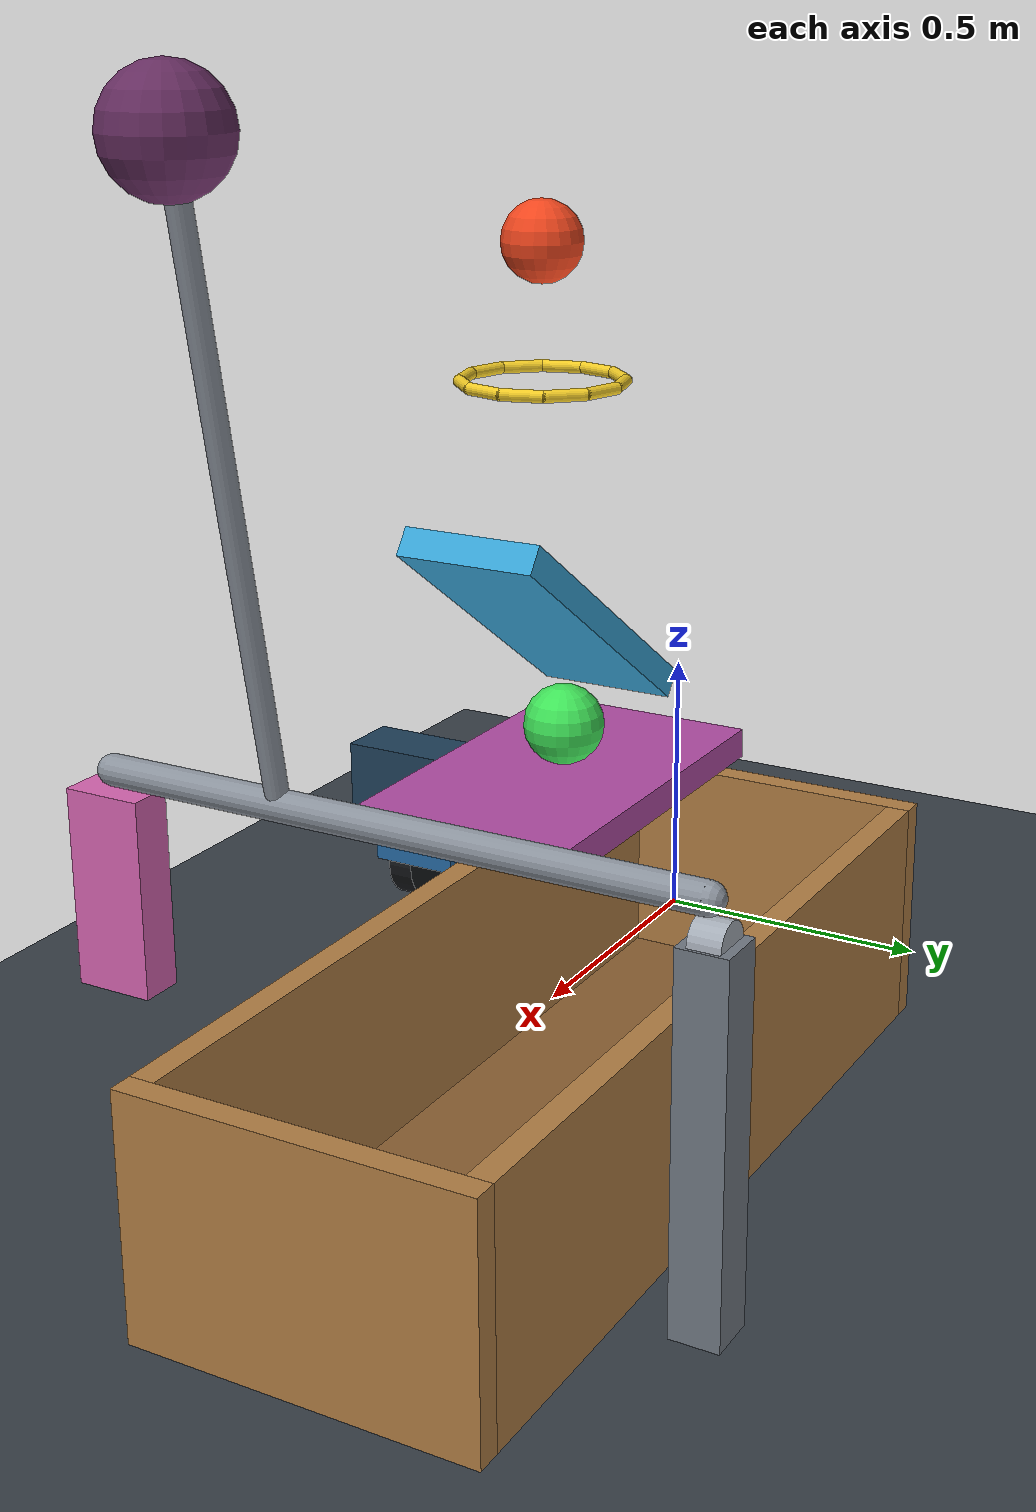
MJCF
<mujoco model="ball_hoop_cart_flap_box">
  <compiler angle="degree" autolimits="true"/>
  <option timestep="0.002" gravity="0 0 -9.81" integrator="implicitfast" iterations="80"/>
  <size njmax="1000" nconmax="300"/>

  <visual>
    <headlight ambient="0.35 0.35 0.35" diffuse="0.65 0.65 0.65" specular="0.2 0.2 0.2"/>
  </visual>

  <worldbody>
    <light name="overhead" pos="0.5 -1 3" dir="0.1 0.3 -1"/>
    <camera name="overview" pos="3.2 -4 2.7" xyaxes="0.85 0.53 0 -0.24 0.39 0.89"/>

    <geom name="floor" type="plane" size="5 5 0.1" rgba="0.22 0.25 0.28 1" friction="0.8 0.02 0.005" condim="6"/>

    <!-- Initial vertical clearance to the inclined contact surface is 0.6 m. -->
    <body name="ball1" pos="0 -0.3 1.28428">
      <freejoint name="ball1_free"/>
      <geom name="ball1_sphere" type="sphere" size="0.08" mass="0.8" rgba="0.95 0.28 0.12 1" friction="0.08 0.005 0.001" condim="3" solref="0.006 1"/>
    </body>

    <body name="hoop" pos="0 -0.3 1.02">
      <geom name="hoop_01" type="capsule" fromto="0.16 0 0 0.138564 0.08 0" size="0.012" rgba="0.95 0.8 0.15 1"/>
      <geom name="hoop_02" type="capsule" fromto="0.138564 0.08 0 0.08 0.138564 0" size="0.012" rgba="0.95 0.8 0.15 1"/>
      <geom name="hoop_03" type="capsule" fromto="0.08 0.138564 0 0 0.16 0" size="0.012" rgba="0.95 0.8 0.15 1"/>
      <geom name="hoop_04" type="capsule" fromto="0 0.16 0 -0.08 0.138564 0" size="0.012" rgba="0.95 0.8 0.15 1"/>
      <geom name="hoop_05" type="capsule" fromto="-0.08 0.138564 0 -0.138564 0.08 0" size="0.012" rgba="0.95 0.8 0.15 1"/>
      <geom name="hoop_06" type="capsule" fromto="-0.138564 0.08 0 -0.16 0 0" size="0.012" rgba="0.95 0.8 0.15 1"/>
      <geom name="hoop_07" type="capsule" fromto="-0.16 0 0 -0.138564 -0.08 0" size="0.012" rgba="0.95 0.8 0.15 1"/>
      <geom name="hoop_08" type="capsule" fromto="-0.138564 -0.08 0 -0.08 -0.138564 0" size="0.012" rgba="0.95 0.8 0.15 1"/>
      <geom name="hoop_09" type="capsule" fromto="-0.08 -0.138564 0 0 -0.16 0" size="0.012" rgba="0.95 0.8 0.15 1"/>
      <geom name="hoop_10" type="capsule" fromto="0 -0.16 0 0.08 -0.138564 0" size="0.012" rgba="0.95 0.8 0.15 1"/>
      <geom name="hoop_11" type="capsule" fromto="0.08 -0.138564 0 0.138564 -0.08 0" size="0.012" rgba="0.95 0.8 0.15 1"/>
      <geom name="hoop_12" type="capsule" fromto="0.138564 -0.08 0 0.16 0 0" size="0.012" rgba="0.95 0.8 0.15 1"/>
    </body>

    <!-- The slide constrains the cart; its wheels are visual. -->
    <body name="cart" pos="0 -0.3 0.25">
      <joint name="cart_slide" type="slide" axis="1 0 0" range="0 1.15" damping="0.02" frictionloss="0.005" solreflimit="0.01 1"/>
      <geom name="cart_base" type="box" pos="0 0 -0.07" size="0.32 0.145 0.04" mass="0.06" rgba="0.15 0.42 0.65 1" friction="0.08 0.005 0.001"/>
      <geom name="cart_sloped_back" type="box" pos="0 0 0.3" euler="0 -35 0" size="0.35 0.145 0.03" mass="0.12" rgba="0.22 0.65 0.85 1" friction="0.08 0.005 0.001" solref="0.006 1"/>
      <geom name="cart_bumper_beam" type="box" pos="0.37 0 -0.02" size="0.12 0.08 0.035" mass="0.01" rgba="0.15 0.42 0.65 1"/>
      <geom name="cart_bumper" type="box" pos="0.44 0 0.09" size="0.055 0.13 0.075" mass="0.03" rgba="0.12 0.25 0.35 1" friction="0.15 0.005 0.001" solref="0.006 1"/>
      <geom name="cart_wheel_front_left" type="cylinder" pos="0.2 -0.17 -0.17" euler="90 0 0" size="0.08 0.025" mass="0.005" contype="0" conaffinity="0" rgba="0.08 0.09 0.1 1"/>
      <geom name="cart_wheel_front_right" type="cylinder" pos="0.2 0.17 -0.17" euler="90 0 0" size="0.08 0.025" mass="0.005" contype="0" conaffinity="0" rgba="0.08 0.09 0.1 1"/>
      <geom name="cart_wheel_rear_left" type="cylinder" pos="-0.2 -0.17 -0.17" euler="90 0 0" size="0.08 0.025" mass="0.005" contype="0" conaffinity="0" rgba="0.08 0.09 0.1 1"/>
      <geom name="cart_wheel_rear_right" type="cylinder" pos="-0.2 0.17 -0.17" euler="90 0 0" size="0.08 0.025" mass="0.005" contype="0" conaffinity="0" rgba="0.08 0.09 0.1 1"/>
    </body>

    <!-- The over-center weight holds the loaded shelf up until the cart strikes its tab. -->
    <!-- Short travel lets the flap stop before ball2 traverses the shelf. -->
    <body name="flap" pos="1.3 0 0.65">
      <joint name="flap_hinge" type="hinge" axis="0 1 0" range="-12 0" damping="0.035" frictionloss="0.002" armature="0.002" solreflimit="0.008 1" solimplimit="0.95 0.99 0.001"/>
      <geom name="flap_shelf" type="box" pos="-0.28 0.3 0" size="0.28 0.17 0.0225" mass="0.06" rgba="0.7 0.3 0.65 1" friction="0.6 0.01 0.003" condim="6"/>
      <geom name="flap_axle" type="capsule" fromto="0 -0.3 0 0 0.68 0" size="0.025" mass="0.02" rgba="0.55 0.58 0.62 1"/>
      <geom name="flap_strike_tab" type="box" pos="0 -0.3 -0.19" size="0.035 0.065 0.16" mass="0.015" rgba="0.85 0.4 0.7 1" friction="0.15 0.005 0.001" solref="0.006 1"/>
      <geom name="flap_weight_arm" type="capsule" fromto="0 0 0 0.17 0 0.95" size="0.018" mass="0.025" rgba="0.55 0.58 0.62 1"/>
      <geom name="flap_overcenter_weight" type="sphere" pos="0.17 0 0.95" size="0.09" mass="0.3" rgba="0.4 0.18 0.38 1"/>
    </body>

    <!-- The hinge supplies the bearing constraint; its visual bearing adds no contact friction. -->
    <body name="flap_support" pos="1.3 0.69 0">
      <geom name="flap_support_post" type="box" pos="0 0 0.295" size="0.04 0.04 0.295" rgba="0.45 0.48 0.52 1"/>
      <geom name="flap_support_bearing" type="cylinder" pos="0 0 0.59" euler="90 0 0" size="0.035 0.025" contype="0" conaffinity="0" rgba="0.65 0.68 0.72 1"/>
    </body>

    <body name="ball2" pos="1 0.3 0.7325">
      <freejoint name="ball2_free"/>
      <geom name="ball2_sphere" type="sphere" size="0.06" mass="0.1" rgba="0.25 0.9 0.35 1" friction="0.8 0.02 0.006" condim="6" solref="0.008 1"/>
    </body>

    <!-- The box is beside the cart's travel lane and beneath the shelf's release edge. -->
    <body name="box" pos="0.98 0.3 0">
      <geom name="box_bottom" type="box" pos="0 0 0.025" size="0.72 0.26 0.02" rgba="0.55 0.38 0.2 1" friction="0.8 0.02 0.006" condim="6" solref="0.008 1"/>
      <geom name="box_left_wall" type="box" pos="-0.72 0 0.205" size="0.02 0.28 0.195" rgba="0.7 0.5 0.27 1" friction="0.8 0.02 0.006" condim="6"/>
      <geom name="box_right_wall" type="box" pos="0.72 0 0.205" size="0.02 0.28 0.195" rgba="0.7 0.5 0.27 1" friction="0.8 0.02 0.006" condim="6"/>
      <geom name="box_front_wall" type="box" pos="0 -0.26 0.205" size="0.7 0.02 0.195" rgba="0.7 0.5 0.27 1" friction="0.8 0.02 0.006" condim="6"/>
      <geom name="box_back_wall" type="box" pos="0 0.26 0.205" size="0.7 0.02 0.195" rgba="0.7 0.5 0.27 1" friction="0.8 0.02 0.006" condim="6"/>
    </body>
  </worldbody>

  <keyframe>
    <key name="start"/>
  </keyframe>
</mujoco>
